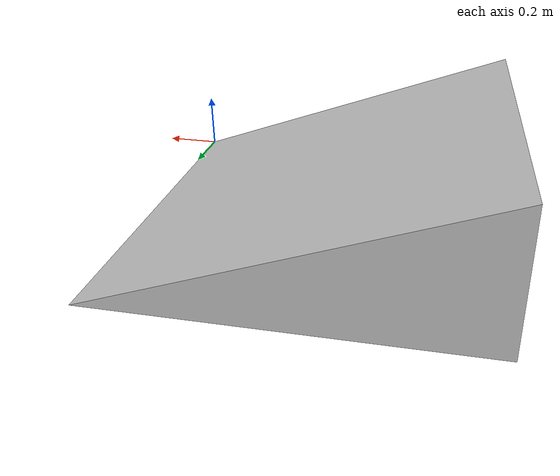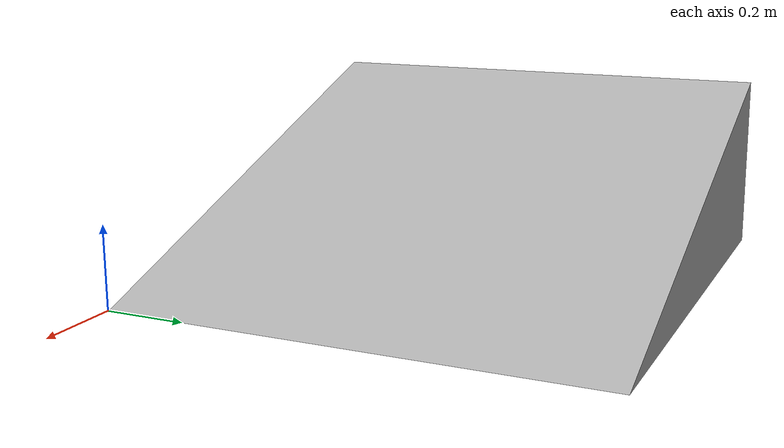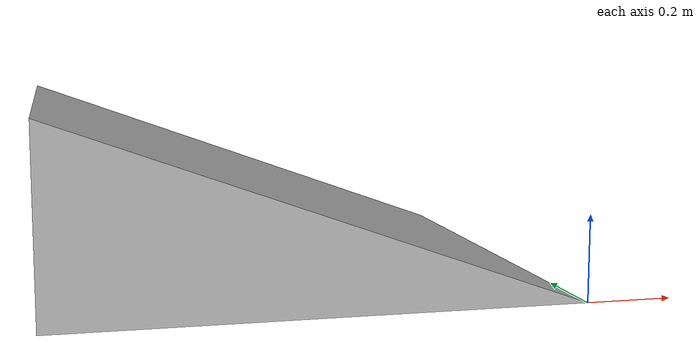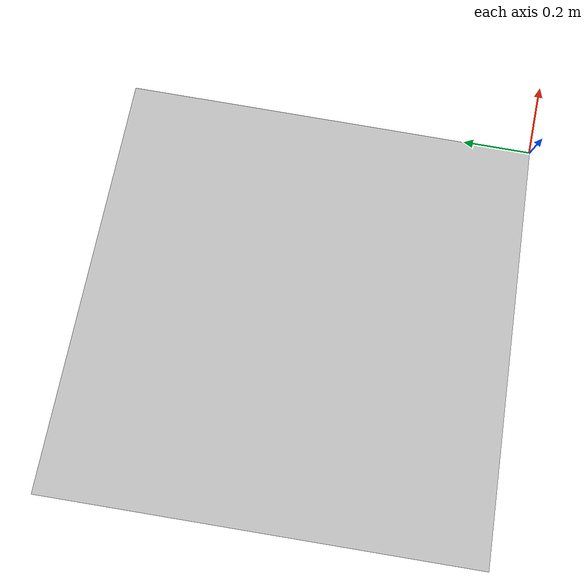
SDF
<?xml version="1.0" ?>
<sdf version="1.6">
  <model name="20degramp">
    <static>true</static>
    <pose>0 0 0 0 0 0</pose>
    <link name="link">
      <collision name="collision">
        <geometry>
          <mesh>
            <scale>0.001 0.001 0.001</scale>
            <uri>model://20degramp/20degramp.stl</uri>
          </mesh>
        </geometry>
        <surface>
          <friction>
            <ode>
              <mu>100</mu>
              <mu2>50</mu2>
            </ode>
          </friction>
        </surface>
      </collision>
      <visual name="visual">
        <geometry>
          <mesh>
            <scale>0.001 0.001 0.001</scale>
            <uri>model://20degramp/20degramp.stl</uri>
          </mesh>
        </geometry>
      </visual>
    </link>
  </model>
</sdf>
